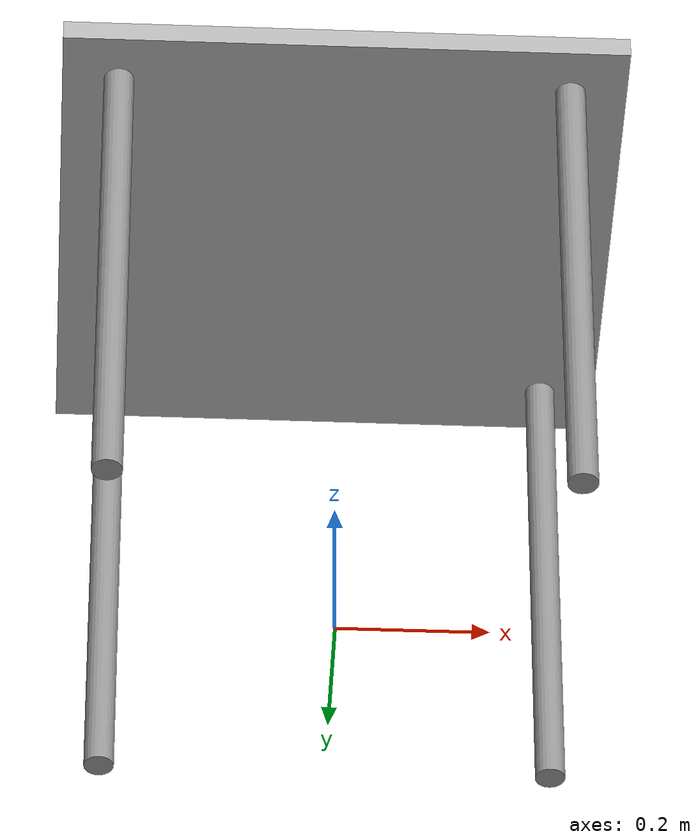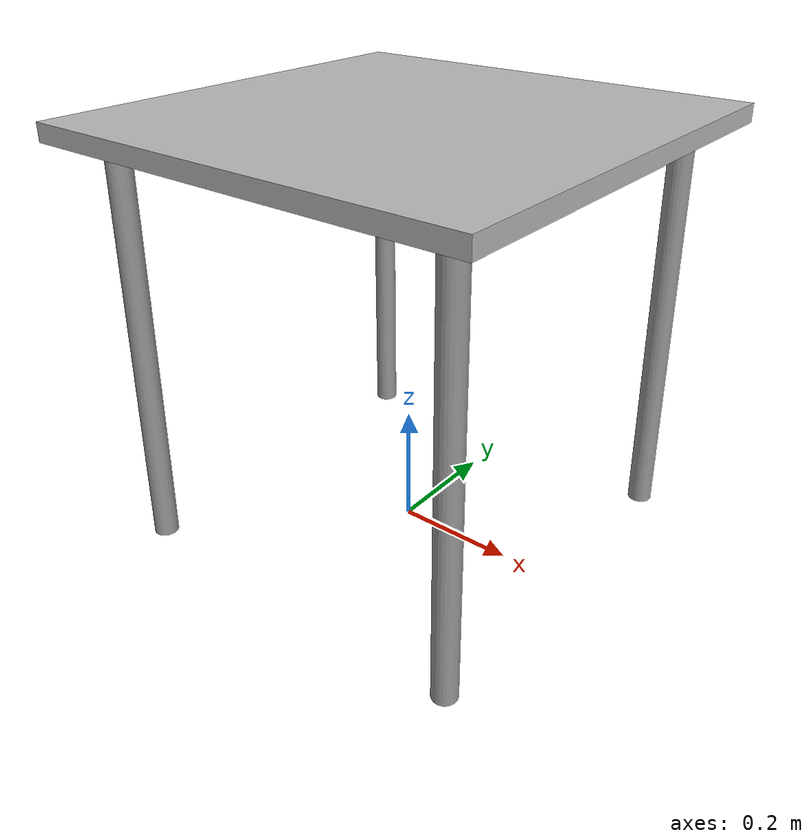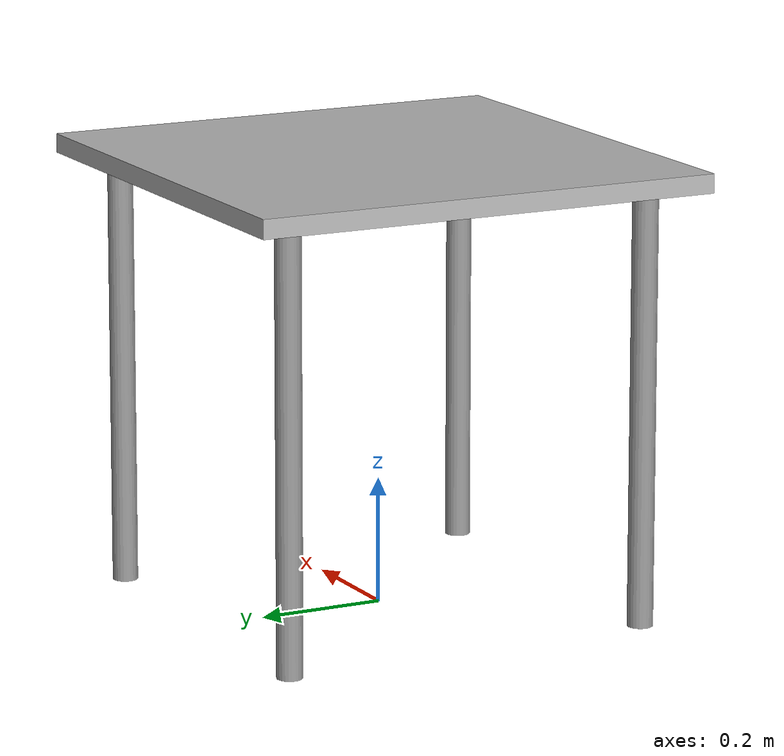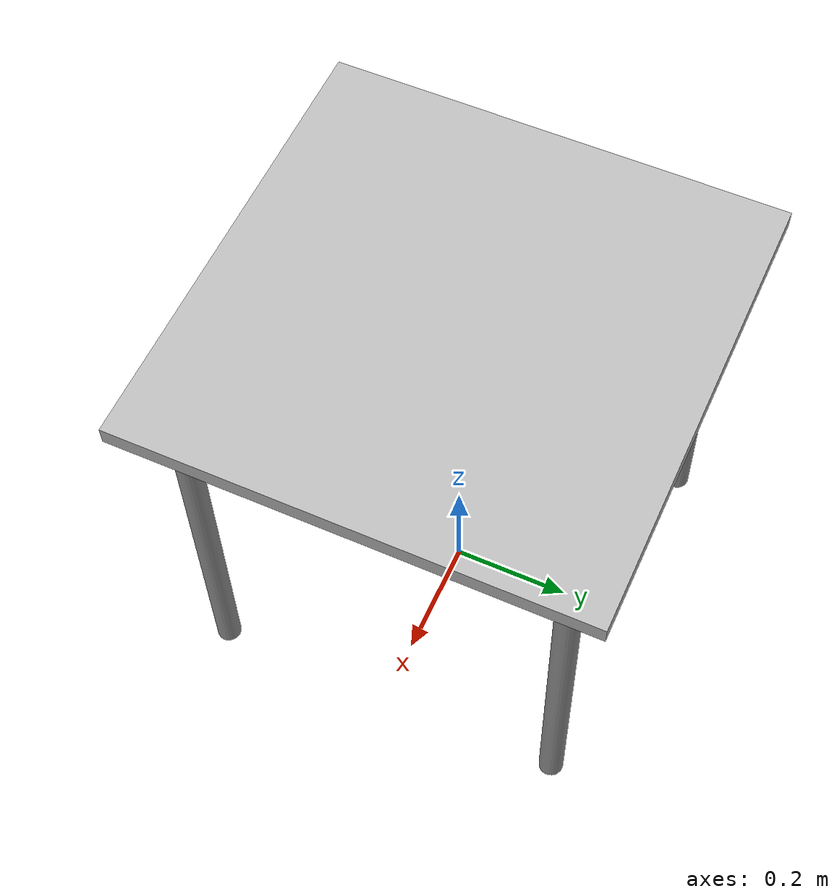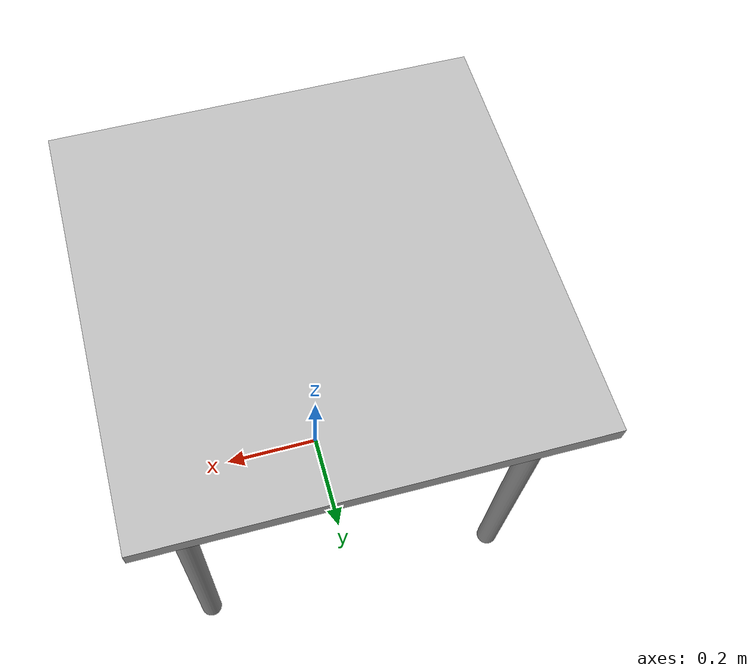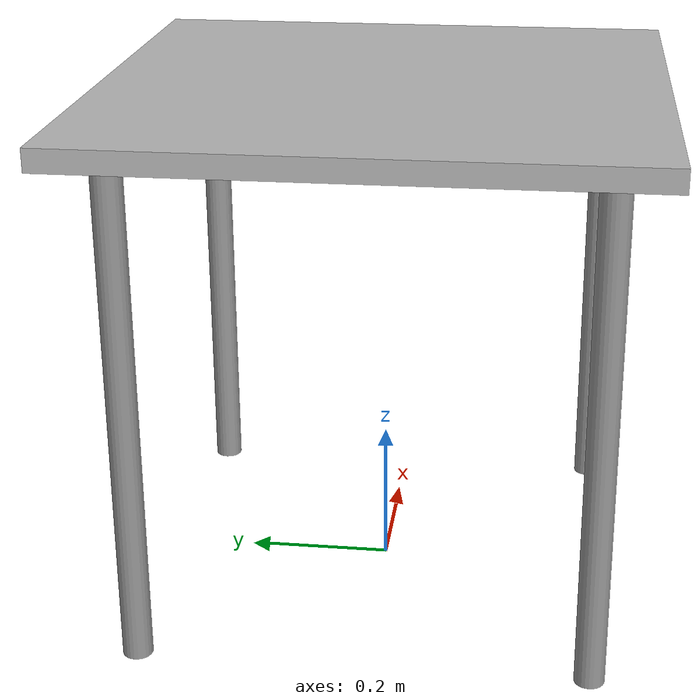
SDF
<?xml version="1.0" ?>
<sdf version="1.5">
  <model name="table_build">
    <static>true</static>
    <link name="link">
      <collision name="surface">
        <pose>0 0 0.7 0 0 0</pose>
        <geometry>
          <box>
            <size>0.75 0.75 0.03</size>
          </box>
        </geometry>
        <surface>
          <friction>
            <ode>
              <mu>0.6</mu>
              <mu2>0.6</mu2>
            </ode>
          </friction>
        </surface>
      </collision>
      <visual name="visual1">
        <pose>0 0 0.7 0 0 0</pose>
        <geometry>
          <box>
            <size>0.75 0.75 0.03</size>
          </box>
        </geometry>
        <material>
          <script>
            <uri>model://table_build.model/materials/scripts/build.material</uri>
            <name>build</name>
          </script>
        </material>
      </visual>
      <collision name="front_left_leg">
        <pose>0.30 0.30 0.35 0 0 0</pose>
        <geometry>
          <cylinder>
            <radius>0.02</radius>
            <length>0.7</length>
          </cylinder>
        </geometry>
      </collision>
      <visual name="front_left_leg">
        <pose>0.30 0.30 0.35 0 0 0</pose>
        <geometry>
          <cylinder>
            <radius>0.02</radius>
            <length>0.7</length>
          </cylinder>
        </geometry>
        <material>
          <script>
            <uri>file://media/materials/scripts/gazebo.material</uri>
            <name>Gazebo/Grey</name>
          </script>
        </material>
      </visual>
      <collision name="front_right_leg">
        <pose>0.30 -0.30 0.35 0 0 0</pose>
        <geometry>
          <cylinder>
            <radius>0.02</radius>
            <length>0.7</length>
          </cylinder>
        </geometry>
      </collision>
      <visual name="front_right_leg">
        <pose>0.30 -0.30 0.35 0 0 0</pose>
        <geometry>
          <cylinder>
            <radius>0.02</radius>
            <length>0.7</length>
          </cylinder>
        </geometry>
        <material>
          <script>
            <uri>file://media/materials/scripts/gazebo.material</uri>
            <name>Gazebo/Grey</name>
          </script>
        </material>
      </visual>
      <collision name="back_right_leg">
        <pose>-0.30 -0.30 0.35 0 0 0</pose>
        <geometry>
          <cylinder>
            <radius>0.02</radius>
            <length>0.7</length>
          </cylinder>
        </geometry>
      </collision>
      <visual name="back_right_leg">
        <pose>-0.30 -0.30 0.35 0 0 0</pose>
        <geometry>
          <cylinder>
            <radius>0.02</radius>
            <length>0.7</length>
          </cylinder>
        </geometry>
        <material>
          <script>
            <uri>file://media/materials/scripts/gazebo.material</uri>
            <name>Gazebo/Grey</name>
          </script>
        </material>
      </visual>
      <collision name="back_left_leg">
        <pose>-0.30 0.30 0.35 0 0 0</pose>
        <geometry>
          <cylinder>
            <radius>0.02</radius>
            <length>0.7</length>
          </cylinder>
        </geometry>
      </collision>
      <visual name="back_left_leg">
        <pose>-0.30 0.30 0.35 0 0 0</pose>
        <geometry>
          <cylinder>
            <radius>0.02</radius>
            <length>0.7</length>
          </cylinder>
        </geometry>
        <material>
          <script>
            <uri>file://media/materials/scripts/gazebo.material</uri>
            <name>Gazebo/Grey</name>
          </script>
        </material>
      </visual>
    </link>
  </model>
</sdf>
